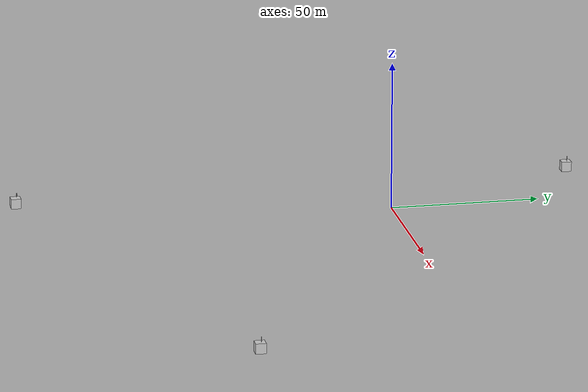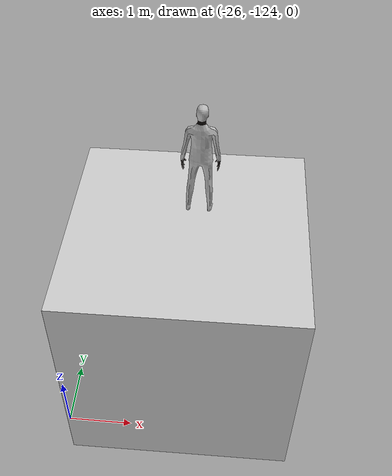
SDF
<sdf version="1.10">
 <world name="iris_runway">
  <physics name="1ms" type="ignore">
   <max_step_size>0.001</max_step_size>
   <real_time_factor>1</real_time_factor>
   <real_time_update_rate>1000</real_time_update_rate>
  </physics>
  <plugin name="gz::sim::systems::Physics" filename="gz-sim-physics-system"/>
  <plugin name="gz::sim::systems::Sensors" filename="gz-sim-sensors-system">
   <render_engine>ogre2</render_engine>
  </plugin>
  <plugin name="gz::sim::systems::UserCommands" filename="gz-sim-user-commands-system"/>
  <plugin name="gz::sim::systems::SceneBroadcaster" filename="gz-sim-scene-broadcaster-system"/>
  <plugin name="gz::sim::systems::Imu" filename="gz-sim-imu-system"/>
  <plugin name="gz::sim::systems::NavSat" filename="gz-sim-navsat-system"/>
  <scene>
   <ambient>1 1 1 1</ambient>
   <background>0.800000012 0.800000012 0.800000012 1</background>
   <shadows>true</shadows>
  </scene>
  <spherical_coordinates>
   <latitude_deg>-35.363261999999999</latitude_deg>
   <longitude_deg>149.16523699999999</longitude_deg>
   <elevation>584</elevation>
   <heading_deg>0</heading_deg>
   <surface_model>EARTH_WGS84</surface_model>
  </spherical_coordinates>
  <gravity>0 0 -9.8000000000000007</gravity>
  <magnetic_field>5.5644999999999998e-06 2.2875799999999999e-05 -4.2388400000000002e-05</magnetic_field>
  <atmosphere type="adiabatic"/>
  <model name="axes">
   <static>true</static>
   <link name="link">
    <visual name="r">
     <cast_shadows>false</cast_shadows>
     <pose>5 0 0.10000000000000001 0 0 0</pose>
     <geometry><box><size>10 0.01 0.01</size></box></geometry>
     <material>
      <ambient>1 0 0 0.800000012</ambient>
      <diffuse>1 0 0 0.800000012</diffuse>
      <emissive>1 0 0 0.800000012</emissive>
      <specular>0.5 0.5 0.5 0.800000012</specular>
     </material>
    </visual>
    <visual name="g">
     <cast_shadows>false</cast_shadows>
     <pose>0 5 0.10000000000000001 0 0 0</pose>
     <geometry><box><size>0.01 10 0.01</size></box></geometry>
     <material>
      <ambient>0 1 0 0.800000012</ambient>
      <diffuse>0 1 0 0.800000012</diffuse>
      <emissive>0 1 0 0.800000012</emissive>
      <specular>0.5 0.5 0.5 0.800000012</specular>
     </material>
    </visual>
    <visual name="b">
     <cast_shadows>false</cast_shadows>
     <pose>0 0 5.0999999999999996 0 0 0</pose>
     <geometry><box><size>0.01 0.01 10</size></box></geometry>
     <material>
      <ambient>0 0 1 0.800000012</ambient>
      <diffuse>0 0 1 0.800000012</diffuse>
      <emissive>0 0 1 0.800000012</emissive>
      <specular>0.5 0.5 0.5 0.800000012</specular>
     </material>
    </visual>
    <sensor name="navsat_sensor" type="navsat"><always_on>true</always_on><update_rate>1</update_rate></sensor>
    <inertial>
     <mass>1</mass>
     <inertia><ixx>1</ixx><ixy>0</ixy><ixz>0</ixz><iyy>1</iyy><iyz>0</iyz><izz>1</izz></inertia>
    </inertial>
   </link>
  </model>
  <model name="untitled">
   <link name="link">
    <visual name="visual"><geometry><mesh><uri>models://house_model/untitled.dae</uri></mesh></geometry></visual>
    <collision name="collision">
     <geometry><mesh><uri>models://house_model/untitled.dae</uri></mesh></geometry>
    </collision>
    <inertial>
     <mass>1</mass>
     <inertia><ixx>1</ixx><ixy>0</ixy><ixz>0</ixz><iyy>1</iyy><iyz>0</iyz><izz>1</izz></inertia>
    </inertial>
   </link>
   <pose>133.39105556045087 -69.481759985431438 -0.56458509238052068 -2.0859518572559376e-19 -5.8750721251021621e-19 -3.7523117055351441e-21</pose>
   <static>false</static>
  </model>
  <model name="untitled_0">
   <link name="link">
    <visual name="visual"><geometry><mesh><uri>models://house_model/untitled.dae</uri></mesh></geometry></visual>
    <collision name="collision">
     <geometry><mesh><uri>models://house_model/untitled.dae</uri></mesh></geometry>
    </collision>
    <inertial>
     <mass>1</mass>
     <inertia><ixx>1</ixx><ixy>0</ixy><ixz>0</ixz><iyy>1</iyy><iyz>0</iyz><izz>1</izz></inertia>
    </inertial>
   </link>
   <pose>-29.725698660075665 66.828327239187985 -0.56458509238052068 -4.7896229081346108e-19 -5.5722816156419161e-19 -3.1105944080049752e-21</pose>
   <static>false</static>
  </model>
  <model name="untitled_1">
   <link name="link">
    <visual name="visual"><geometry><mesh><uri>models://house_model/untitled.dae</uri></mesh></geometry></visual>
    <collision name="collision">
     <geometry><mesh><uri>models://house_model/untitled.dae</uri></mesh></geometry>
    </collision>
    <inertial>
     <mass>1</mass>
     <inertia><ixx>1</ixx><ixy>0</ixy><ixz>0</ixz><iyy>1</iyy><iyz>0</iyz><izz>1</izz></inertia>
    </inertial>
   </link>
   <pose>-24.17814826965332 -122.78700256347656 -0.56458583282886488 5.4348426874078852e-15 -7.0801297053149481e-18 3.0049099390887843e-19</pose>
   <static>false</static>
  </model>
  <light name="sun" type="directional">
   <pose>0 0 10 0 0 0</pose>
   <intensity>1</intensity>
   <direction>-0.5 0.10000000000000001 -0.90000000000000002</direction>
   <diffuse>0.800000012 0.800000012 0.800000012 1</diffuse>
   <specular>0.800000012 0.800000012 0.800000012 1</specular>
   <attenuation>
    <range>1000</range>
    <linear>0.01</linear>
    <constant>0.90000000000000002</constant>
    <quadratic>0.001</quadratic>
   </attenuation>
   <spot><inner_angle>0</inner_angle><outer_angle>0</outer_angle><falloff>0</falloff></spot>
  </light>
 </world>
</sdf>
